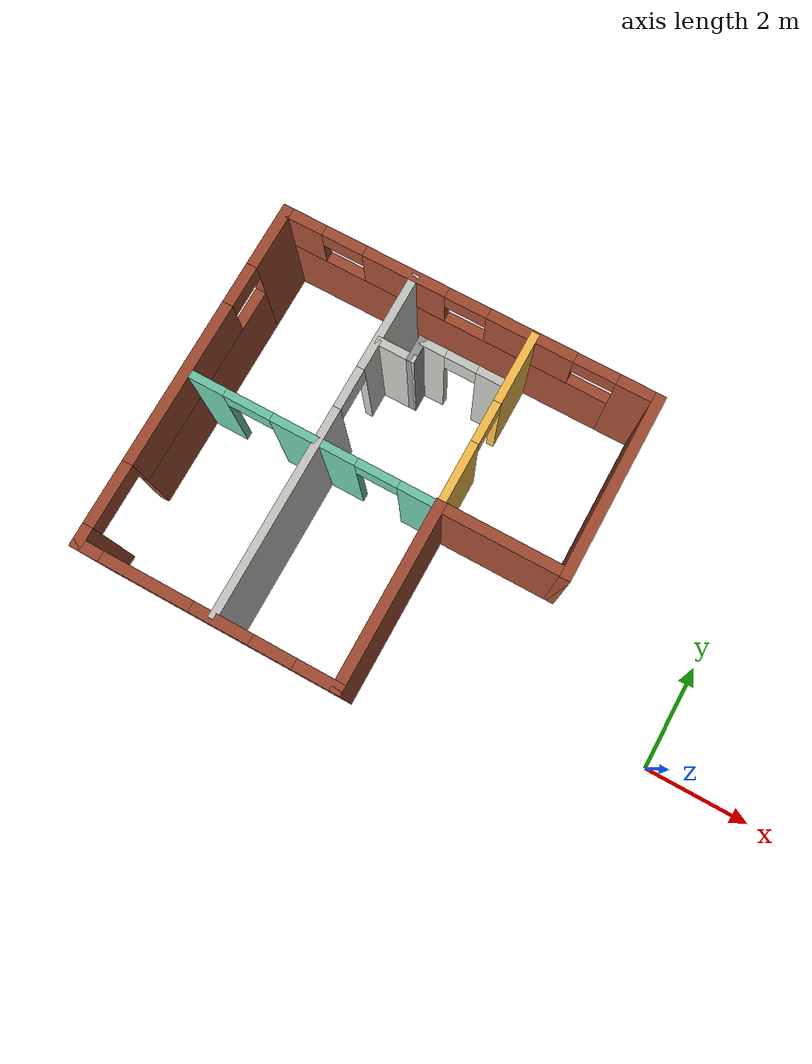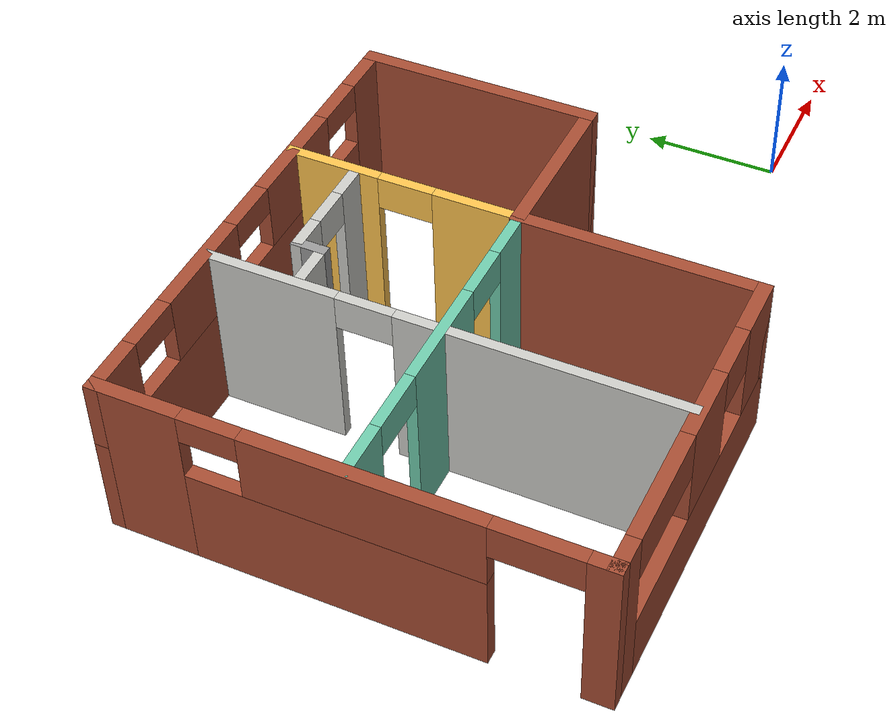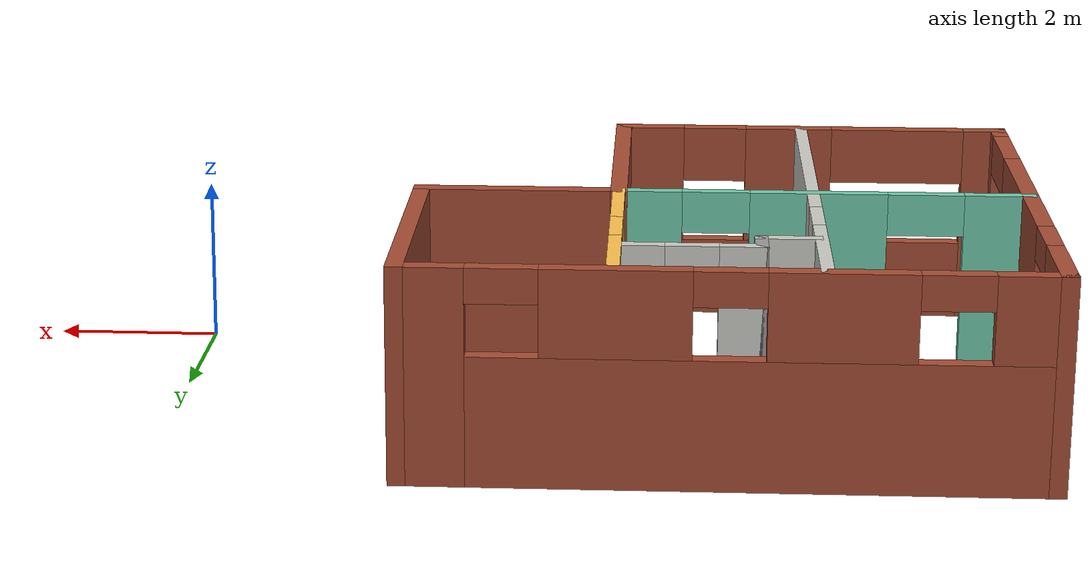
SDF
<?xml version='1.0'?>
<sdf version='1.7'>
  <model name='Building'>
    <pose>-5.0865 1.93 0 0 -0 0</pose>
    <link name='Wall_14'>
      <pose>-4.9865 -0 0 0 -0 -1.5708</pose>
      <visual name='Wall_14_Visual_0'>
        <pose>-2.81496 0 1.25 0 -0 0</pose>
        <geometry>
          <box>
            <size>1.27056 0.2 2.5</size>
          </box>
        </geometry>
        <material>
          <script>
            <uri>file://media/materials/scripts/gazebo.material</uri>
            <name>Gazebo/Bricks</name>
          </script>
          <ambient>1 1 1 1</ambient>
        </material>
        <meta>
          <layer>0</layer>
        </meta>
      </visual>
      <collision name='Wall_14_Collision_0'>
        <geometry>
          <box>
            <size>1.27056 0.2 2.5</size>
          </box>
        </geometry>
        <pose>-2.81496 0 1.25 0 -0 0</pose>
      </collision>
      <visual name='Wall_14_Visual_1'>
        <pose>3.23578 0 1.25 0 -0 0</pose>
        <geometry>
          <box>
            <size>0.428921 0.2 2.5</size>
          </box>
        </geometry>
        <material>
          <script>
            <uri>file://media/materials/scripts/gazebo.material</uri>
            <name>Gazebo/Bricks</name>
          </script>
          <ambient>1 1 1 1</ambient>
        </material>
        <meta>
          <layer>0</layer>
        </meta>
      </visual>
      <collision name='Wall_14_Collision_1'>
        <geometry>
          <box>
            <size>0.428921 0.2 2.5</size>
          </box>
        </geometry>
        <pose>3.23578 0 1.25 0 -0 0</pose>
      </collision>
      <visual name='Wall_14_Visual_2'>
        <pose>-0.179181 0 0.75 0 -0 0</pose>
        <geometry>
          <box>
            <size>4.00101 0.2 1.5</size>
          </box>
        </geometry>
        <material>
          <script>
            <uri>file://media/materials/scripts/gazebo.material</uri>
            <name>Gazebo/Bricks</name>
          </script>
          <ambient>1 1 1 1</ambient>
        </material>
        <meta>
          <layer>0</layer>
        </meta>
      </visual>
      <collision name='Wall_14_Collision_2'>
        <geometry>
          <box>
            <size>4.00101 0.2 1.5</size>
          </box>
        </geometry>
        <pose>-0.179181 0 0.75 0 -0 0</pose>
      </collision>
      <visual name='Wall_14_Visual_3'>
        <pose>0.220819 0 2 0 -0 0</pose>
        <geometry>
          <box>
            <size>3.201 0.2 1</size>
          </box>
        </geometry>
        <material>
          <script>
            <uri>file://media/materials/scripts/gazebo.material</uri>
            <name>Gazebo/Bricks</name>
          </script>
          <ambient>1 1 1 1</ambient>
        </material>
        <meta>
          <layer>0</layer>
        </meta>
      </visual>
      <collision name='Wall_14_Collision_3'>
        <geometry>
          <box>
            <size>3.201 0.2 1</size>
          </box>
        </geometry>
        <pose>0.220819 0 2 0 -0 0</pose>
      </collision>
      <visual name='Wall_14_Visual_4'>
        <pose>2.42132 0 2.25 0 -0 0</pose>
        <geometry>
          <box>
            <size>1.2 0.2 0.5</size>
          </box>
        </geometry>
        <material>
          <script>
            <uri>file://media/materials/scripts/gazebo.material</uri>
            <name>Gazebo/Bricks</name>
          </script>
          <ambient>1 1 1 1</ambient>
        </material>
        <meta>
          <layer>0</layer>
        </meta>
      </visual>
      <collision name='Wall_14_Collision_4'>
        <geometry>
          <box>
            <size>1.2 0.2 0.5</size>
          </box>
        </geometry>
        <pose>2.42132 0 2.25 0 -0 0</pose>
      </collision>
      <visual name='Wall_14_Visual_5'>
        <pose>-1.77968 0 2.3 0 -0 0</pose>
        <geometry>
          <box>
            <size>0.8 0.2 0.4</size>
          </box>
        </geometry>
        <material>
          <script>
            <uri>file://media/materials/scripts/gazebo.material</uri>
            <name>Gazebo/Bricks</name>
          </script>
          <ambient>1 1 1 1</ambient>
        </material>
        <meta>
          <layer>0</layer>
        </meta>
      </visual>
      <collision name='Wall_14_Collision_5'>
        <geometry>
          <box>
            <size>0.8 0.2 0.4</size>
          </box>
        </geometry>
        <pose>-1.77968 0 2.3 0 -0 0</pose>
      </collision>
    </link>
    <link name='Wall_15'>
      <pose>-2.5615 -3.35 0 0 -0 0</pose>
      <visual name='Wall_15_Visual_0'>
        <pose>-2.24849 0 1.25 0 -0 0</pose>
        <geometry>
          <box>
            <size>0.553027 0.2 2.5</size>
          </box>
        </geometry>
        <material>
          <script>
            <uri>file://media/materials/scripts/gazebo.material</uri>
            <name>Gazebo/Bricks</name>
          </script>
          <ambient>1 1 1 1</ambient>
        </material>
        <meta>
          <layer>0</layer>
        </meta>
      </visual>
      <collision name='Wall_15_Collision_0'>
        <geometry>
          <box>
            <size>0.553027 0.2 2.5</size>
          </box>
        </geometry>
        <pose>-2.24849 0 1.25 0 -0 0</pose>
      </collision>
      <visual name='Wall_15_Visual_1'>
        <pose>0.276513 0 0.5 0 -0 0</pose>
        <geometry>
          <box>
            <size>4.49697 0.2 1</size>
          </box>
        </geometry>
        <material>
          <script>
            <uri>file://media/materials/scripts/gazebo.material</uri>
            <name>Gazebo/Bricks</name>
          </script>
          <ambient>1 1 1 1</ambient>
        </material>
        <meta>
          <layer>0</layer>
        </meta>
      </visual>
      <collision name='Wall_15_Collision_1'>
        <geometry>
          <box>
            <size>4.49697 0.2 1</size>
          </box>
        </geometry>
        <pose>0.276513 0 0.5 0 -0 0</pose>
      </collision>
      <visual name='Wall_15_Visual_2'>
        <pose>0.283027 0 1.75 0 -0 0</pose>
        <geometry>
          <box>
            <size>1.11 0.2 1.5</size>
          </box>
        </geometry>
        <material>
          <script>
            <uri>file://media/materials/scripts/gazebo.material</uri>
            <name>Gazebo/Bricks</name>
          </script>
          <ambient>1 1 1 1</ambient>
        </material>
        <meta>
          <layer>0</layer>
        </meta>
      </visual>
      <collision name='Wall_15_Collision_2'>
        <geometry>
          <box>
            <size>1.11 0.2 1.5</size>
          </box>
        </geometry>
        <pose>0.283027 0 1.75 0 -0 0</pose>
      </collision>
      <visual name='Wall_15_Visual_3'>
        <pose>2.08151 0 1.75 0 -0 0</pose>
        <geometry>
          <box>
            <size>0.886973 0.2 1.5</size>
          </box>
        </geometry>
        <material>
          <script>
            <uri>file://media/materials/scripts/gazebo.material</uri>
            <name>Gazebo/Bricks</name>
          </script>
          <ambient>1 1 1 1</ambient>
        </material>
        <meta>
          <layer>0</layer>
        </meta>
      </visual>
      <collision name='Wall_15_Collision_3'>
        <geometry>
          <box>
            <size>0.886973 0.2 1.5</size>
          </box>
        </geometry>
        <pose>2.08151 0 1.75 0 -0 0</pose>
      </collision>
      <visual name='Wall_15_Visual_4'>
        <pose>-1.12197 0 2.15 0 -0 0</pose>
        <geometry>
          <box>
            <size>1.7 0.2 0.7</size>
          </box>
        </geometry>
        <material>
          <script>
            <uri>file://media/materials/scripts/gazebo.material</uri>
            <name>Gazebo/Bricks</name>
          </script>
          <ambient>1 1 1 1</ambient>
        </material>
        <meta>
          <layer>0</layer>
        </meta>
      </visual>
      <collision name='Wall_15_Collision_4'>
        <geometry>
          <box>
            <size>1.7 0.2 0.7</size>
          </box>
        </geometry>
        <pose>-1.12197 0 2.15 0 -0 0</pose>
      </collision>
      <visual name='Wall_15_Visual_5'>
        <pose>1.23803 0 2.15 0 -0 0</pose>
        <geometry>
          <box>
            <size>0.8 0.2 0.7</size>
          </box>
        </geometry>
        <material>
          <script>
            <uri>file://media/materials/scripts/gazebo.material</uri>
            <name>Gazebo/Bricks</name>
          </script>
          <ambient>1 1 1 1</ambient>
        </material>
        <meta>
          <layer>0</layer>
        </meta>
      </visual>
      <collision name='Wall_15_Collision_5'>
        <geometry>
          <box>
            <size>0.8 0.2 0.7</size>
          </box>
        </geometry>
        <pose>1.23803 0 2.15 0 -0 0</pose>
      </collision>
    </link>
    <link name='Wall_16'>
      <collision name='Wall_16_Collision'>
        <geometry>
          <box>
            <size>3.55 0.2 2.5</size>
          </box>
        </geometry>
        <pose>0 0 1.25 0 -0 0</pose>
      </collision>
      <visual name='Wall_16_Visual'>
        <pose>0 0 1.25 0 -0 0</pose>
        <geometry>
          <box>
            <size>3.55 0.2 2.5</size>
          </box>
        </geometry>
        <material>
          <script>
            <uri>file://media/materials/scripts/gazebo.material</uri>
            <name>Gazebo/Bricks</name>
          </script>
          <ambient>1 1 1 1</ambient>
        </material>
        <meta>
          <layer>0</layer>
        </meta>
      </visual>
      <pose>-0.1365 -1.675 0 0 -0 1.5708</pose>
    </link>
    <link name='Wall_17'>
      <collision name='Wall_17_Collision'>
        <geometry>
          <box>
            <size>2.55 0.2 2.5</size>
          </box>
        </geometry>
        <pose>0 0 1.25 0 -0 0</pose>
      </collision>
      <visual name='Wall_17_Visual'>
        <pose>0 0 1.25 0 -0 0</pose>
        <geometry>
          <box>
            <size>2.55 0.2 2.5</size>
          </box>
        </geometry>
        <material>
          <script>
            <uri>file://media/materials/scripts/gazebo.material</uri>
            <name>Gazebo/Bricks</name>
          </script>
          <ambient>1 1 1 1</ambient>
        </material>
        <meta>
          <layer>0</layer>
        </meta>
      </visual>
      <pose>1.0385 -0 0 0 -0 0</pose>
    </link>
    <link name='Wall_18'>
      <collision name='Wall_18_Collision'>
        <geometry>
          <box>
            <size>3.55 0.2 2.5</size>
          </box>
        </geometry>
        <pose>0 0 1.25 0 -0 0</pose>
      </collision>
      <visual name='Wall_18_Visual'>
        <pose>0 0 1.25 0 -0 0</pose>
        <geometry>
          <box>
            <size>3.55 0.2 2.5</size>
          </box>
        </geometry>
        <material>
          <script>
            <uri>file://media/materials/scripts/gazebo.material</uri>
            <name>Gazebo/Bricks</name>
          </script>
          <ambient>1 1 1 1</ambient>
        </material>
        <meta>
          <layer>0</layer>
        </meta>
      </visual>
      <pose>2.2135 1.675 0 0 -0 1.5708</pose>
    </link>
    <link name='Wall_19'>
      <pose>-1.3865 3.35 0 0 -0 3.14159</pose>
      <visual name='Wall_19_Visual_0'>
        <pose>-3.27151 0 1.25 0 -0 0</pose>
        <geometry>
          <box>
            <size>0.856973 0.2 2.5</size>
          </box>
        </geometry>
        <material>
          <script>
            <uri>file://media/materials/scripts/gazebo.material</uri>
            <name>Gazebo/Bricks</name>
          </script>
          <ambient>1 1 1 1</ambient>
        </material>
        <meta>
          <layer>0</layer>
        </meta>
      </visual>
      <collision name='Wall_19_Collision_0'>
        <geometry>
          <box>
            <size>0.856973 0.2 2.5</size>
          </box>
        </geometry>
        <pose>-3.27151 0 1.25 0 -0 0</pose>
      </collision>
      <visual name='Wall_19_Visual_1'>
        <pose>0.428486 0 0.75 0 -0 0</pose>
        <geometry>
          <box>
            <size>6.54303 0.2 1.5</size>
          </box>
        </geometry>
        <material>
          <script>
            <uri>file://media/materials/scripts/gazebo.material</uri>
            <name>Gazebo/Bricks</name>
          </script>
          <ambient>1 1 1 1</ambient>
        </material>
        <meta>
          <layer>0</layer>
        </meta>
      </visual>
      <collision name='Wall_19_Collision_1'>
        <geometry>
          <box>
            <size>6.54303 0.2 1.5</size>
          </box>
        </geometry>
        <pose>0.428486 0 0.75 0 -0 0</pose>
      </collision>
      <visual name='Wall_19_Visual_2'>
        <pose>-1.21303 0 2 0 -0 0</pose>
        <geometry>
          <box>
            <size>1.66 0.2 1</size>
          </box>
        </geometry>
        <material>
          <script>
            <uri>file://media/materials/scripts/gazebo.material</uri>
            <name>Gazebo/Bricks</name>
          </script>
          <ambient>1 1 1 1</ambient>
        </material>
        <meta>
          <layer>0</layer>
        </meta>
      </visual>
      <collision name='Wall_19_Collision_2'>
        <geometry>
          <box>
            <size>1.66 0.2 1</size>
          </box>
        </geometry>
        <pose>-1.21303 0 2 0 -0 0</pose>
      </collision>
      <visual name='Wall_19_Visual_3'>
        <pose>1.22697 0 2 0 -0 0</pose>
        <geometry>
          <box>
            <size>1.62 0.2 1</size>
          </box>
        </geometry>
        <material>
          <script>
            <uri>file://media/materials/scripts/gazebo.material</uri>
            <name>Gazebo/Bricks</name>
          </script>
          <ambient>1 1 1 1</ambient>
        </material>
        <meta>
          <layer>0</layer>
        </meta>
      </visual>
      <collision name='Wall_19_Collision_3'>
        <geometry>
          <box>
            <size>1.62 0.2 1</size>
          </box>
        </geometry>
        <pose>1.22697 0 2 0 -0 0</pose>
      </collision>
      <visual name='Wall_19_Visual_4'>
        <pose>3.26849 0 2 0 -0 0</pose>
        <geometry>
          <box>
            <size>0.863027 0.2 1</size>
          </box>
        </geometry>
        <material>
          <script>
            <uri>file://media/materials/scripts/gazebo.material</uri>
            <name>Gazebo/Bricks</name>
          </script>
          <ambient>1 1 1 1</ambient>
        </material>
        <meta>
          <layer>0</layer>
        </meta>
      </visual>
      <collision name='Wall_19_Collision_4'>
        <geometry>
          <box>
            <size>0.863027 0.2 1</size>
          </box>
        </geometry>
        <pose>3.26849 0 2 0 -0 0</pose>
      </collision>
      <visual name='Wall_19_Visual_5'>
        <pose>-2.44303 0 2.3 0 -0 0</pose>
        <geometry>
          <box>
            <size>0.8 0.2 0.4</size>
          </box>
        </geometry>
        <material>
          <script>
            <uri>file://media/materials/scripts/gazebo.material</uri>
            <name>Gazebo/Bricks</name>
          </script>
          <ambient>1 1 1 1</ambient>
        </material>
        <meta>
          <layer>0</layer>
        </meta>
      </visual>
      <collision name='Wall_19_Collision_5'>
        <geometry>
          <box>
            <size>0.8 0.2 0.4</size>
          </box>
        </geometry>
        <pose>-2.44303 0 2.3 0 -0 0</pose>
      </collision>
      <visual name='Wall_19_Visual_6'>
        <pose>0.016973 0 2.3 0 -0 0</pose>
        <geometry>
          <box>
            <size>0.8 0.2 0.4</size>
          </box>
        </geometry>
        <material>
          <script>
            <uri>file://media/materials/scripts/gazebo.material</uri>
            <name>Gazebo/Bricks</name>
          </script>
          <ambient>1 1 1 1</ambient>
        </material>
        <meta>
          <layer>0</layer>
        </meta>
      </visual>
      <collision name='Wall_19_Collision_6'>
        <geometry>
          <box>
            <size>0.8 0.2 0.4</size>
          </box>
        </geometry>
        <pose>0.016973 0 2.3 0 -0 0</pose>
      </collision>
      <visual name='Wall_19_Visual_7'>
        <pose>2.43697 0 2.3 0 -0 0</pose>
        <geometry>
          <box>
            <size>0.8 0.2 0.4</size>
          </box>
        </geometry>
        <material>
          <script>
            <uri>file://media/materials/scripts/gazebo.material</uri>
            <name>Gazebo/Bricks</name>
          </script>
          <ambient>1 1 1 1</ambient>
        </material>
        <meta>
          <layer>0</layer>
        </meta>
      </visual>
      <collision name='Wall_19_Collision_7'>
        <geometry>
          <box>
            <size>0.8 0.2 0.4</size>
          </box>
        </geometry>
        <pose>2.43697 0 2.3 0 -0 0</pose>
      </collision>
    </link>
    <link name='Wall_21'>
      <pose>-2.5615 -0 0 0 -0 3.14159</pose>
      <visual name='Wall_21_Visual_0'>
        <pose>-2.0857 0 1.25 0 -0 0</pose>
        <geometry>
          <box>
            <size>0.8286 0.15 2.5</size>
          </box>
        </geometry>
        <material>
          <script>
            <uri>file://media/materials/scripts/gazebo.material</uri>
            <name>Gazebo/Grey</name>
          </script>
          <ambient>0.435294 0.796078 0.67451 1</ambient>
        </material>
        <meta>
          <layer>0</layer>
        </meta>
      </visual>
      <collision name='Wall_21_Collision_0'>
        <geometry>
          <box>
            <size>0.8286 0.15 2.5</size>
          </box>
        </geometry>
        <pose>-2.0857 0 1.25 0 -0 0</pose>
      </collision>
      <visual name='Wall_21_Visual_1'>
        <pose>-0.058737 0 1.25 0 -0 0</pose>
        <geometry>
          <box>
            <size>1.62533 0.15 2.5</size>
          </box>
        </geometry>
        <material>
          <script>
            <uri>file://media/materials/scripts/gazebo.material</uri>
            <name>Gazebo/Grey</name>
          </script>
          <ambient>0.435294 0.796078 0.67451 1</ambient>
        </material>
        <meta>
          <layer>0</layer>
        </meta>
      </visual>
      <collision name='Wall_21_Collision_1'>
        <geometry>
          <box>
            <size>1.62533 0.15 2.5</size>
          </box>
        </geometry>
        <pose>-0.058737 0 1.25 0 -0 0</pose>
      </collision>
      <visual name='Wall_21_Visual_2'>
        <pose>2.07696 0 1.25 0 -0 0</pose>
        <geometry>
          <box>
            <size>0.846073 0.15 2.5</size>
          </box>
        </geometry>
        <material>
          <script>
            <uri>file://media/materials/scripts/gazebo.material</uri>
            <name>Gazebo/Grey</name>
          </script>
          <ambient>0.435294 0.796078 0.67451 1</ambient>
        </material>
        <meta>
          <layer>0</layer>
        </meta>
      </visual>
      <collision name='Wall_21_Collision_2'>
        <geometry>
          <box>
            <size>0.846073 0.15 2.5</size>
          </box>
        </geometry>
        <pose>2.07696 0 1.25 0 -0 0</pose>
      </collision>
      <visual name='Wall_21_Visual_3'>
        <pose>-1.2714 0 2.25 0 -0 0</pose>
        <geometry>
          <box>
            <size>0.8 0.15 0.5</size>
          </box>
        </geometry>
        <material>
          <script>
            <uri>file://media/materials/scripts/gazebo.material</uri>
            <name>Gazebo/Grey</name>
          </script>
          <ambient>0.435294 0.796078 0.67451 1</ambient>
        </material>
        <meta>
          <layer>0</layer>
        </meta>
      </visual>
      <collision name='Wall_21_Collision_3'>
        <geometry>
          <box>
            <size>0.8 0.15 0.5</size>
          </box>
        </geometry>
        <pose>-1.2714 0 2.25 0 -0 0</pose>
      </collision>
      <visual name='Wall_21_Visual_4'>
        <pose>1.20393 0 2.25 0 -0 0</pose>
        <geometry>
          <box>
            <size>0.9 0.15 0.5</size>
          </box>
        </geometry>
        <material>
          <script>
            <uri>file://media/materials/scripts/gazebo.material</uri>
            <name>Gazebo/Grey</name>
          </script>
          <ambient>0.435294 0.796078 0.67451 1</ambient>
        </material>
        <meta>
          <layer>0</layer>
        </meta>
      </visual>
      <collision name='Wall_21_Collision_4'>
        <geometry>
          <box>
            <size>0.9 0.15 0.5</size>
          </box>
        </geometry>
        <pose>1.20393 0 2.25 0 -0 0</pose>
      </collision>
    </link>
    <link name='Wall_23'>
      <pose>-2.43461 0.010248 0 0 -0 -1.5708</pose>
      <visual name='Wall_23_Visual_0'>
        <pose>-2.41085 0 1.25 0 -0 0</pose>
        <geometry>
          <box>
            <size>1.92831 0.15 2.5</size>
          </box>
        </geometry>
        <material>
          <script>
            <uri>file://media/materials/scripts/gazebo.material</uri>
            <name>Gazebo/CeilingTiled</name>
          </script>
          <ambient>0.435294 0.796078 0.67451 1</ambient>
        </material>
        <meta>
          <layer>0</layer>
        </meta>
      </visual>
      <collision name='Wall_23_Collision_0'>
        <geometry>
          <box>
            <size>1.92831 0.15 2.5</size>
          </box>
        </geometry>
        <pose>-2.41085 0 1.25 0 -0 0</pose>
      </collision>
      <visual name='Wall_23_Visual_1'>
        <pose>1.36415 0 1.25 0 -0 0</pose>
        <geometry>
          <box>
            <size>4.02169 0.15 2.5</size>
          </box>
        </geometry>
        <material>
          <script>
            <uri>file://media/materials/scripts/gazebo.material</uri>
            <name>Gazebo/CeilingTiled</name>
          </script>
          <ambient>0.435294 0.796078 0.67451 1</ambient>
        </material>
        <meta>
          <layer>0</layer>
        </meta>
      </visual>
      <collision name='Wall_23_Collision_1'>
        <geometry>
          <box>
            <size>4.02169 0.15 2.5</size>
          </box>
        </geometry>
        <pose>1.36415 0 1.25 0 -0 0</pose>
      </collision>
      <visual name='Wall_23_Visual_2'>
        <pose>-1.04669 0 2.25 0 -0 0</pose>
        <geometry>
          <box>
            <size>0.8 0.15 0.5</size>
          </box>
        </geometry>
        <material>
          <script>
            <uri>file://media/materials/scripts/gazebo.material</uri>
            <name>Gazebo/CeilingTiled</name>
          </script>
          <ambient>0.435294 0.796078 0.67451 1</ambient>
        </material>
        <meta>
          <layer>0</layer>
        </meta>
      </visual>
      <collision name='Wall_23_Collision_2'>
        <geometry>
          <box>
            <size>0.8 0.15 0.5</size>
          </box>
        </geometry>
        <pose>-1.04669 0 2.25 0 -0 0</pose>
      </collision>
    </link>
    <link name='Wall_25'>
      <pose>-0.1365 1.675 0 0 -0 1.5708</pose>
      <visual name='Wall_25_Visual_0'>
        <pose>-1.09827 0 1.25 0 -0 0</pose>
        <geometry>
          <box>
            <size>1.30347 0.15 2.5</size>
          </box>
        </geometry>
        <material>
          <script>
            <uri>file://media/materials/scripts/gazebo.material</uri>
            <name>Gazebo/Grey</name>
          </script>
          <ambient>1 0.764706 0.305882 1</ambient>
        </material>
        <meta>
          <layer>0</layer>
        </meta>
      </visual>
      <collision name='Wall_25_Collision_0'>
        <geometry>
          <box>
            <size>1.30347 0.15 2.5</size>
          </box>
        </geometry>
        <pose>-1.09827 0 1.25 0 -0 0</pose>
      </collision>
      <visual name='Wall_25_Visual_1'>
        <pose>1.05173 0 1.25 0 -0 0</pose>
        <geometry>
          <box>
            <size>1.39654 0.15 2.5</size>
          </box>
        </geometry>
        <material>
          <script>
            <uri>file://media/materials/scripts/gazebo.material</uri>
            <name>Gazebo/Grey</name>
          </script>
          <ambient>1 0.764706 0.305882 1</ambient>
        </material>
        <meta>
          <layer>0</layer>
        </meta>
      </visual>
      <collision name='Wall_25_Collision_1'>
        <geometry>
          <box>
            <size>1.39654 0.15 2.5</size>
          </box>
        </geometry>
        <pose>1.05173 0 1.25 0 -0 0</pose>
      </collision>
      <visual name='Wall_25_Visual_2'>
        <pose>-0.046535 0 2.25 0 -0 0</pose>
        <geometry>
          <box>
            <size>0.8 0.15 0.5</size>
          </box>
        </geometry>
        <material>
          <script>
            <uri>file://media/materials/scripts/gazebo.material</uri>
            <name>Gazebo/Grey</name>
          </script>
          <ambient>1 0.764706 0.305882 1</ambient>
        </material>
        <meta>
          <layer>0</layer>
        </meta>
      </visual>
      <collision name='Wall_25_Collision_2'>
        <geometry>
          <box>
            <size>0.8 0.15 0.5</size>
          </box>
        </geometry>
        <pose>-0.046535 0 2.25 0 -0 0</pose>
      </collision>
    </link>
    <link name='Wall_30'>
      <collision name='Wall_30_Collision'>
        <geometry>
          <box>
            <size>0.76067 0.15 2.5</size>
          </box>
        </geometry>
        <pose>0 0 1.25 0 -0 0</pose>
      </collision>
      <visual name='Wall_30_Visual'>
        <pose>0 0 1.25 0 -0 0</pose>
        <geometry>
          <box>
            <size>0.76067 0.15 2.5</size>
          </box>
        </geometry>
        <material>
          <script>
            <uri>file://media/materials/scripts/gazebo.material</uri>
            <name>Gazebo/CeilingTiled</name>
          </script>
          <ambient>1 1 1 1</ambient>
        </material>
        <meta>
          <layer>0</layer>
        </meta>
      </visual>
      <pose>-2.06879 2.0248 0 0 -0 0</pose>
    </link>
    <link name='Wall_31'>
      <collision name='Wall_31_Collision'>
        <geometry>
          <box>
            <size>0.5 0.15 2.5</size>
          </box>
        </geometry>
        <pose>0 0 1.25 0 -0 0</pose>
      </collision>
      <visual name='Wall_31_Visual'>
        <pose>0 0 1.25 0 -0 0</pose>
        <geometry>
          <box>
            <size>0.5 0.15 2.5</size>
          </box>
        </geometry>
        <material>
          <script>
            <uri>file://media/materials/scripts/gazebo.material</uri>
            <name>Gazebo/Grey</name>
          </script>
          <ambient>1 1 1 1</ambient>
        </material>
        <meta>
          <layer>0</layer>
        </meta>
      </visual>
      <pose>-1.76345 2.1998 0 0 -0 1.5708</pose>
    </link>
    <link name='Wall_32'>
      <pose>-0.968788 2.3748 0 0 -0 0</pose>
      <visual name='Wall_32_Visual_0'>
        <pose>-0.596832 0 1.25 0 -0 0</pose>
        <geometry>
          <box>
            <size>0.545665 0.15 2.5</size>
          </box>
        </geometry>
        <material>
          <script>
            <uri>file://media/materials/scripts/gazebo.material</uri>
            <name>Gazebo/CeilingTiled</name>
          </script>
          <ambient>1 1 1 1</ambient>
        </material>
        <meta>
          <layer>0</layer>
        </meta>
      </visual>
      <collision name='Wall_32_Collision_0'>
        <geometry>
          <box>
            <size>0.545665 0.15 2.5</size>
          </box>
        </geometry>
        <pose>-0.596832 0 1.25 0 -0 0</pose>
      </collision>
      <visual name='Wall_32_Visual_1'>
        <pose>0.572833 0 1.25 0 -0 0</pose>
        <geometry>
          <box>
            <size>0.593665 0.15 2.5</size>
          </box>
        </geometry>
        <material>
          <script>
            <uri>file://media/materials/scripts/gazebo.material</uri>
            <name>Gazebo/CeilingTiled</name>
          </script>
          <ambient>1 1 1 1</ambient>
        </material>
        <meta>
          <layer>0</layer>
        </meta>
      </visual>
      <collision name='Wall_32_Collision_1'>
        <geometry>
          <box>
            <size>0.593665 0.15 2.5</size>
          </box>
        </geometry>
        <pose>0.572833 0 1.25 0 -0 0</pose>
      </collision>
      <visual name='Wall_32_Visual_2'>
        <pose>-0.024 0 2.25 0 -0 0</pose>
        <geometry>
          <box>
            <size>0.6 0.15 0.5</size>
          </box>
        </geometry>
        <material>
          <script>
            <uri>file://media/materials/scripts/gazebo.material</uri>
            <name>Gazebo/CeilingTiled</name>
          </script>
          <ambient>1 1 1 1</ambient>
        </material>
        <meta>
          <layer>0</layer>
        </meta>
      </visual>
      <collision name='Wall_32_Collision_2'>
        <geometry>
          <box>
            <size>0.6 0.15 0.5</size>
          </box>
        </geometry>
        <pose>-0.024 0 2.25 0 -0 0</pose>
      </collision>
    </link>
    <static>1</static>
  </model>
</sdf>
